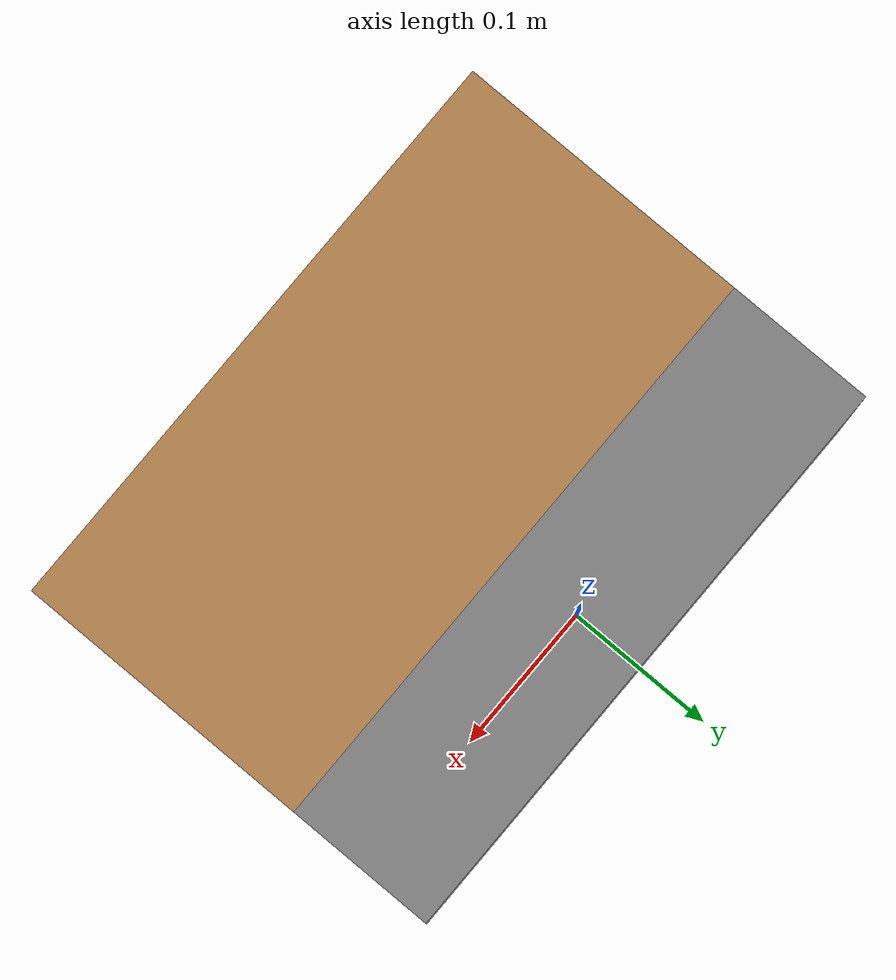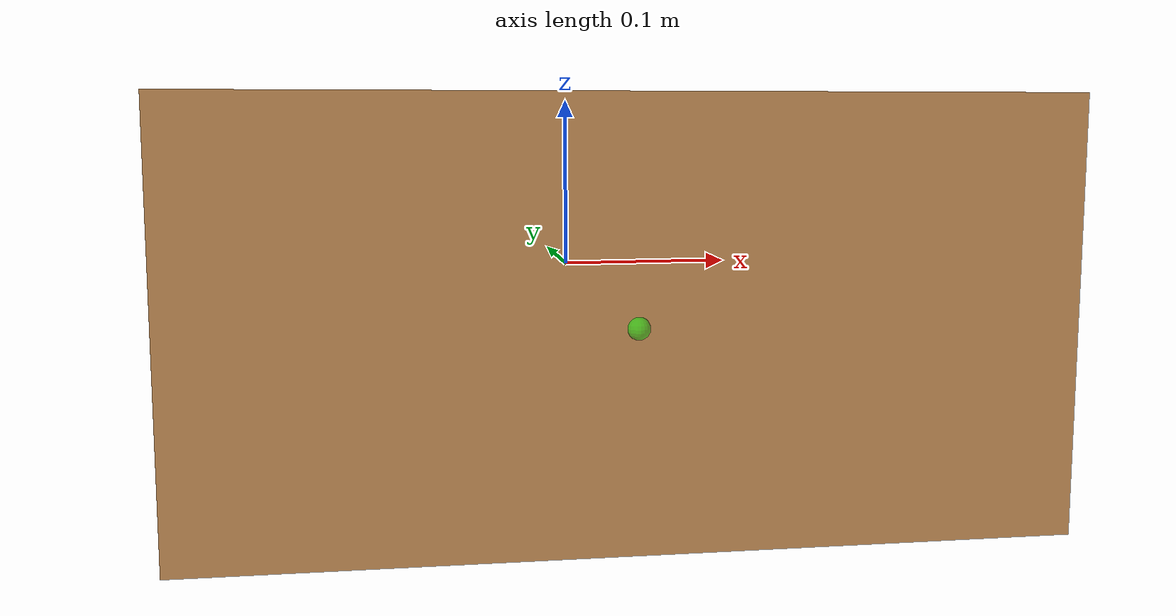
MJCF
<mujoco model="2d_slider">
    <actuator>
        <motor name="slide_x" joint="slider_x" gear="10" ctrllimited="true" ctrlrange="-1 1" />
        <motor name="slide_y" joint="slider_y" gear="10" ctrllimited="true" ctrlrange="-1 1" />
    </actuator>
    <asset>
        <texture name="grid" type="2d" builtin="checker" rgb1=".1 .2 .3" rgb2=".2 .3 .4" width="300" height="300" mark="edge" markrgb=".2 .3 .4"/>
        <material name="grid" texture="grid" texrepeat="1 1" texuniform="true" reflectance=".2"/>
        <material name="self" rgba=".7 .5 .3 1"/>
        <material name="self_default" rgba=".7 .5 .3 1"/>
        <material name="self_highlight" rgba="0 .5 .3 1"/>
        <material name="effector" rgba=".7 .4 .2 1"/>
        <material name="effector_default" rgba=".7 .4 .2 1"/>
        <material name="effector_highlight" rgba="0 .5 .3 1"/>
        <material name="decoration" rgba=".3 .5 .7 1"/>
        <material name="eye" rgba="0 .2 1 1"/>
        <material name="target" rgba=".6 .3 .3 1"/>
        <material name="target_default" rgba=".6 .3 .3 1"/>
        <material name="target_highlight" rgba=".6 .3 .3 .4"/>
        <material name="site" rgba=".5 .5 .5 .3"/>
        <material name="transparent" rgba=".5 .5 .5 .5"/>
    </asset>
    <worldbody>

        <body name="slider_base" pos="0 0 0">
            <joint name="slider_x" type="slide" limited="true" axis="1 0 0" range="-0.1 0.1" solreflimit=".08 1" damping="5e-4"/>
            <joint name="slider_y" type="slide" limited="true" axis="0 1 0" range="-1.0 0.1" solreflimit=".08 1" damping="5e-4"/>
            <body name="ft_sensor">
                <site name="ft_frame" pos="0 -0.05 0" size="0.01 0.01 0.01" rgba="1 0 0 0.5" type="sphere" group="0" />
                <geom type="box" size="0.2 0.05 0.1" mass="0.01" group="0"/>
                <geom type="box" size="0.2 0.05 0.1" material="decoration" group="1"/>
                <body name="slider_tip" pos="0 -0.15 0">
                    <geom name="slider_tip" type="box" size="0.2 0.1 0.1" mass="1.5" material="self" group="0"/>
                    <geom name="slider_tip_vis" type="box" size="0.2 0.1 0.1" mass="0.1" material="self" group="1"/>
                    <site rgba="0 1. 0 0.5" size="0.005" pos="0 -0.1 0" name="tip_site"/>

                </body>
            </body>
        </body>
    </worldbody>
    <sensor>
        <force name="force_ee" site="ft_frame"/>
        <torque name="torque_ee" site="ft_frame"/>
        <accelerometer name='acc_ee' site="ft_frame"/>
    </sensor>
</mujoco>
